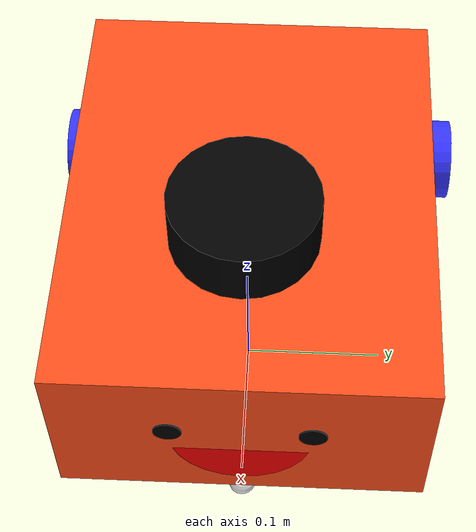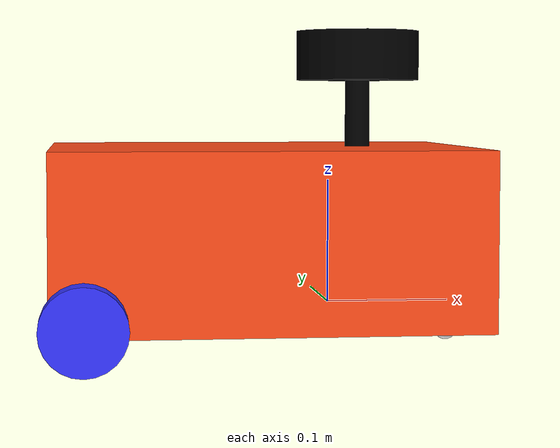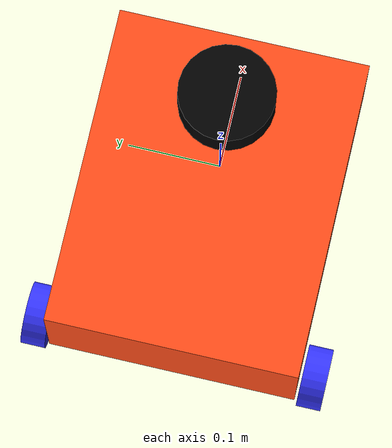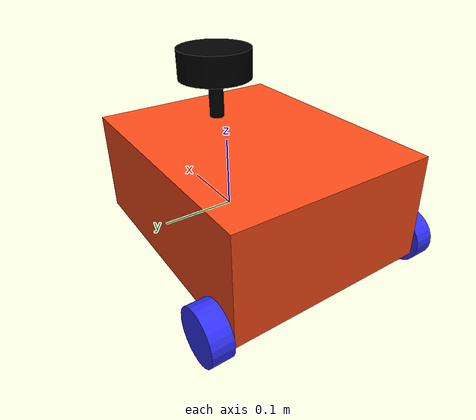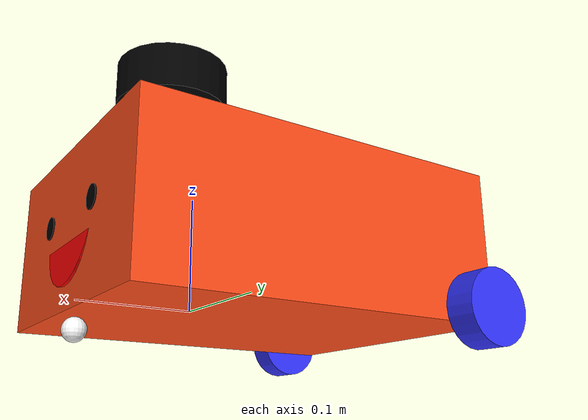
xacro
<?xml version="1.0"?>
<robot xmlns:xacro="http://www.ros.org/wiki/xacro"  name="robot">

    <xacro:arg name="use_ros2_control" default="true"/>
    <xacro:arg name="sim_mode" default="false"/>

    <xacro:include filename="robot_core.xacro" />

    <xacro:if value="$(arg use_ros2_control)">
        <xacro:include filename="ros2_control.xacro" />
    </xacro:if>
    <xacro:unless value="$(arg use_ros2_control)">
        <xacro:include filename="gazebo_control.xacro" />
    </xacro:unless>
    <xacro:include filename="lidar.xacro" />

    <xacro:include filename="face.xacro" />

</robot>

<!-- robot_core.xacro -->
<robot xmlns:xacro="http://www.ros.org/wiki/xacro" >

    <xacro:include filename="inertial_macros.xacro"/>

    <xacro:property name="chassis_length" value="0.335"/>
    <xacro:property name="chassis_width" value="0.265"/>
    <xacro:property name="chassis_height" value="0.138"/>
    <xacro:property name="chassis_mass" value="1.0"/>
    <xacro:property name="wheel_radius" value="0.033"/>
    <xacro:property name="wheel_thickness" value="0.026"/>
    <xacro:property name="wheel_mass" value="0.05"/>
    <xacro:property name="wheel_offset_x" value="0.226"/>
    <xacro:property name="wheel_offset_y" value="0.1485"/>
    <xacro:property name="wheel_offset_z" value="0.01"/>
    <xacro:property name="caster_wheel_radius" value="0.01"/>
    <xacro:property name="caster_wheel_mass" value="0.01"/>
    <xacro:property name="caster_wheel_offset_x" value="0.325"/>
    <xacro:property name="caster_wheel_offset_z" value="${wheel_offset_z - wheel_radius + caster_wheel_radius}"/>

    <material name="white">
        <color rgba="1 1 1 1" />
    </material>

    <material name="orange">
        <color rgba="1 0.3 0.1 1"/>
    </material>

    <material name="blue">
        <color rgba="0.2 0.2 1 1"/>
    </material>

    <material name="black">
        <color rgba="0 0 0 1"/>
    </material>

    <material name="red">
        <color rgba="1 0 0 1"/>
    </material>

    <!-- BASE LINK -->

    <link name="base_link">

    </link>

    <!-- BASE_FOOTPRINT LINK -->

    <joint name="base_footprint_joint" type="fixed">
        <parent link="base_link"/>
        <child link="base_footprint"/>
        <origin xyz="0 0 0" rpy="0 0 0"/>
    </joint>

    <link name="base_footprint">
    </link>

    <!-- CHASSIS LINK -->

    <joint name="chassis_joint" type="fixed">
        <parent link="base_link"/>
        <child link="chassis"/>
        <origin xyz="${-wheel_offset_x} 0 ${-wheel_offset_z}"/>
    </joint>

    <link name="chassis">
        <visual>
            <origin xyz="${chassis_length/2} 0 ${chassis_height/2}"/>
            <geometry>
                <box size="${chassis_length} ${chassis_width} ${chassis_height}"/>
            </geometry>
            <material name="orange"/>
        </visual>
        <collision>
            <origin xyz="${chassis_length/2} 0 ${chassis_height/2}"/>
            <geometry>
                <box size="${chassis_length} ${chassis_width} ${chassis_height}"/>
            </geometry>
        </collision>
        <xacro:inertial_box mass="0.5" x="${chassis_length}" y="${chassis_width}" z="${chassis_height}">
            <origin xyz="${chassis_length/2} 0 ${chassis_height/2}" rpy="0 0 0"/>
        </xacro:inertial_box>
    </link>

    <gazebo reference="chassis">
        <material>Gazebo/Orange</material>
    </gazebo>

    <!-- LEFT WHEEL LINK -->

    <joint name="left_wheel_joint" type="continuous">
        <parent link="base_link"/>
        <child link="left_wheel"/>
        <origin xyz="-0.2 ${wheel_offset_y} 0" rpy="-${pi/2} 0 0" />
        <axis xyz="0 0 1"/>
    </joint>

    <link name="left_wheel">
        <visual>
            <geometry>
                <cylinder radius="${wheel_radius}" length="${wheel_thickness}"/>
            </geometry>
            <material name="blue"/>
        </visual>
        <collision>
            <geometry>
                <sphere radius="${wheel_radius}"/>
            </geometry>
        </collision>
        <xacro:inertial_cylinder mass="${wheel_mass}" length="${wheel_thickness}" radius="${wheel_radius}">
            <origin xyz="0 0 0" rpy="0 0 0"/>
        </xacro:inertial_cylinder>
    </link>

    <gazebo reference="left_wheel">
        <material>Gazebo/Blue</material>
    </gazebo>

    <!-- RIGHT WHEEL LINK -->

    <joint name="right_wheel_joint" type="continuous">
        <parent link="base_link"/>
        <child link="right_wheel"/>
        <origin xyz="-0.2 ${-wheel_offset_y} 0" rpy="${pi/2} 0 0" />
        <axis xyz="0 0 -1"/>
    </joint>

    <link name="right_wheel">
        <visual>
            <geometry>
                <cylinder radius="${wheel_radius}" length="${wheel_thickness}"/>
            </geometry>
            <material name="blue"/>
        </visual>
        <collision>
            <geometry>
                <sphere radius="${wheel_radius}"/>
            </geometry>
        </collision>
        <xacro:inertial_cylinder mass="${wheel_mass}" length="${wheel_thickness}" radius="${wheel_radius}">
            <origin xyz="0 0 0" rpy="0 0 0"/>
        </xacro:inertial_cylinder>
    </link>

    <gazebo reference="right_wheel">
        <material>Gazebo/Blue</material>
    </gazebo>

    <!-- CASTER WHEEL LINK -->

    <joint name="caster_wheel_joint" type="fixed">
        <parent link="chassis"/>
        <child link="caster_wheel"/>
        <origin xyz="${caster_wheel_offset_x} 0 ${caster_wheel_offset_z}"/>
    </joint>

    <link name="caster_wheel">
        <visual>
            <geometry>
                <sphere radius="${caster_wheel_radius}"/>
            </geometry>
            <material name="white"/>
        </visual>
        <collision>
            <geometry>
                <sphere radius="${caster_wheel_radius}"/>
            </geometry>
        </collision>
        <xacro:inertial_sphere mass="${caster_wheel_mass}" radius="${caster_wheel_radius}">
            <origin xyz="0 0 0" rpy="0 0 0"/>
        </xacro:inertial_sphere>
    </link>

    <gazebo reference="caster_wheel">
        <material>Gazebo/White</material>
        <mu1 value="0.001"/>
        <mu2 value="0.001"/>
    </gazebo>

</robot>

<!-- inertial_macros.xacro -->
<robot xmlns:xacro="http://www.ros.org/wiki/xacro" >

    <!-- Specify some standard inertial calculations https://en.wikipedia.org/wiki/List_of_moments_of_inertia -->
    <!-- These make use of xacro's mathematical functionality -->

    <xacro:macro name="inertial_sphere" params="mass radius *origin">
        <inertial>
            <xacro:insert_block name="origin"/>
            <mass value="${mass}" />
            <inertia ixx="${(2/5) * mass * (radius*radius)}" ixy="0.0" ixz="0.0"
                    iyy="${(2/5) * mass * (radius*radius)}" iyz="0.0"
                    izz="${(2/5) * mass * (radius*radius)}" />
        </inertial>
    </xacro:macro>

    <xacro:macro name="inertial_box" params="mass x y z *origin">
        <inertial>
            <xacro:insert_block name="origin"/>
            <mass value="${mass}" />
            <inertia ixx="${(1/12) * mass * (y*y+z*z)}" ixy="0.0" ixz="0.0"
                    iyy="${(1/12) * mass * (x*x+z*z)}" iyz="0.0"
                    izz="${(1/12) * mass * (x*x+y*y)}" />
        </inertial>
    </xacro:macro>

    <xacro:macro name="inertial_cylinder" params="mass length radius *origin">
        <inertial>
            <xacro:insert_block name="origin"/>
            <mass value="${mass}" />
            <inertia ixx="${(1/12) * mass * (3*radius*radius + length*length)}" ixy="0.0" ixz="0.0"
                    iyy="${(1/12) * mass * (3*radius*radius + length*length)}" iyz="0.0"
                    izz="${(1/2) * mass * (radius*radius)}" />
        </inertial>
    </xacro:macro>

</robot>

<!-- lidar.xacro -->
<robot xmlns:xacro="http://www.ros.org/wiki/xacro" >

    <joint name="laser_joint" type="fixed">
        <parent link="chassis"/>
        <child link="laser_frame"/>
        <origin xyz="0.25 0 0.212" rpy="0 0 0"/>
    </joint>

    <link name="laser_frame">
        <visual>
            <geometry>
                <cylinder radius="0.05" length="0.04"/>
            </geometry>
            <material name="black"/>
        </visual>
        <visual>
            <origin xyz="0 0 -0.05"/>
            <geometry>
                <cylinder radius="0.01" length="0.1"/>
            </geometry>
            <material name="black"/>
        </visual>
        <collision>
            <geometry>
                <cylinder radius="0.05" length="0.04"/>
            </geometry>
        </collision>
        <xacro:inertial_cylinder mass="0.1" length="0.04" radius="0.05">
            <origin xyz="0 0 0" rpy="0 0 0"/>
        </xacro:inertial_cylinder>
    </link>

    <gazebo reference="laser_frame">
        <material>Gazebo/Black</material>

        <sensor name="laser" type="ray">
            <pose> 0 0 0 0 0 0 </pose>
            <visualize>false</visualize>
            <update_rate>10</update_rate>
            <ray>
                <scan>
                    <horizontal>
                        <samples>360</samples>
                        <min_angle>-3.14</min_angle>
                        <max_angle>3.14</max_angle>
                    </horizontal>
                </scan>
                <range>
                    <min>0.3</min>
                    <max>12</max>
                </range>
            </ray>
            <plugin name="laser_controller" filename="libgazebo_ros_ray_sensor.so">
                <ros>
                    <argument>~/out:=scan</argument>
                </ros>
                <output_type>sensor_msgs/LaserScan</output_type>
                <frame_name>laser_frame</frame_name>
            </plugin>
        </sensor>
    </gazebo>

</robot>

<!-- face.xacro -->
<robot xmlns:xacro="http://www.ros.org/wiki/xacro" >

    <joint name="face_joint" type="fixed">
        <parent link="chassis"/>
        <child link="face_link"/>
        <origin xyz="${chassis_length} 0 ${chassis_height/2}" rpy="0 0 0"/>
    </joint>

    <link name="face_link">
        <visual>
            <origin xyz="0 0.05 0.01" rpy="0 ${pi/2} 0"/>
            <geometry>
                <cylinder radius="0.01" length="0.002"/>
            </geometry>
            <material name="black"/>
        </visual>

        <visual>
            <origin xyz="0 -0.05 0.01" rpy="0 ${pi/2} 0"/>
            <geometry>
                <cylinder radius="0.01" length="0.002"/>
            </geometry>
            <material name="black"/>
        </visual>

        <visual>
            <origin xyz="-0.011 0 -0.00" rpy="0 ${1.5} 0"/>
            <geometry>
                <cylinder radius="0.05" length="0.02"/>
            </geometry>
            <material name="red"/>
        </visual>
    </link>

    <gazebo reference="face_link">
        <material>Gazebo/Black</material>
    </gazebo>

</robot>
